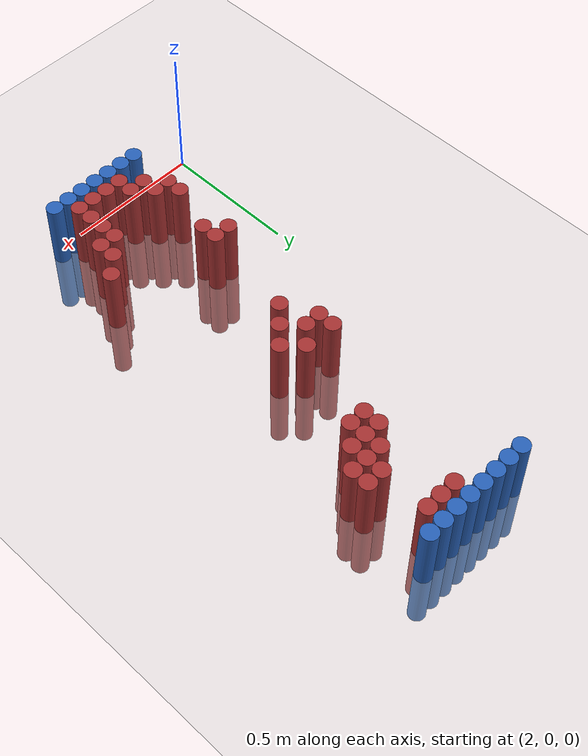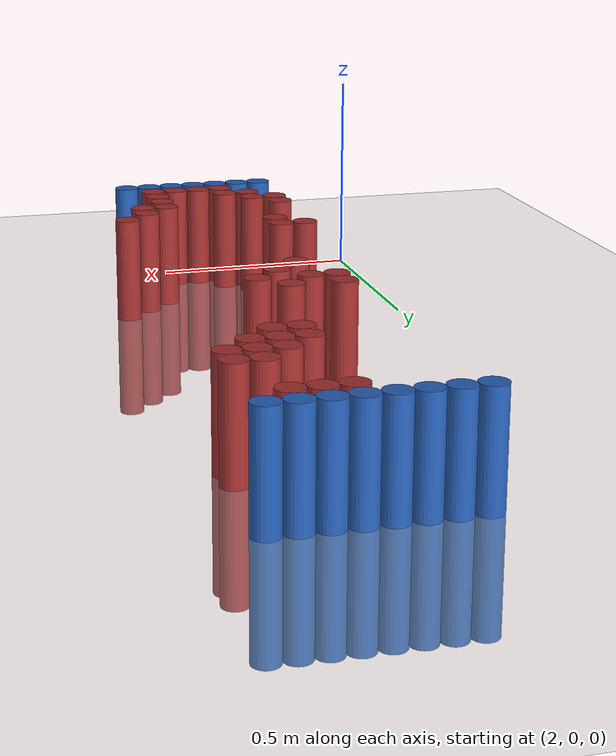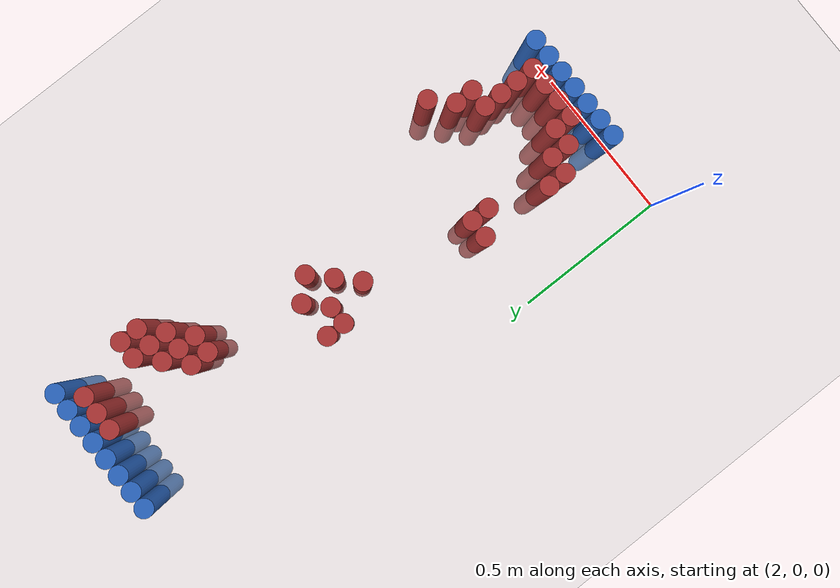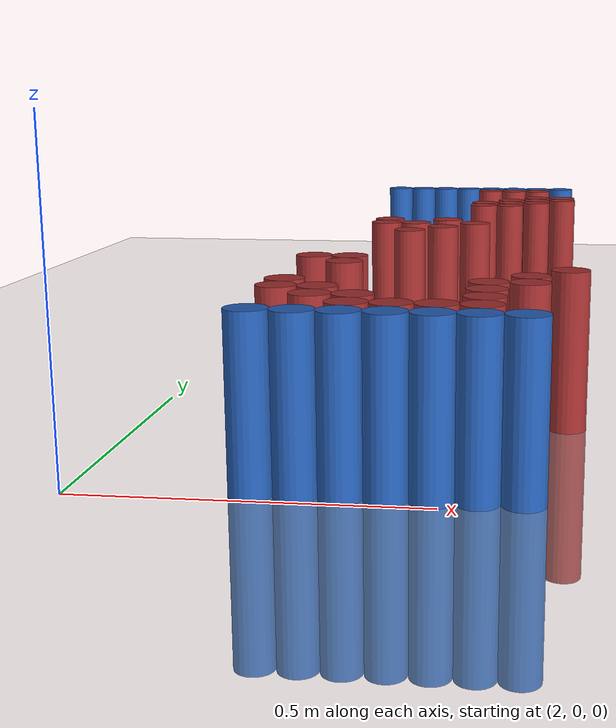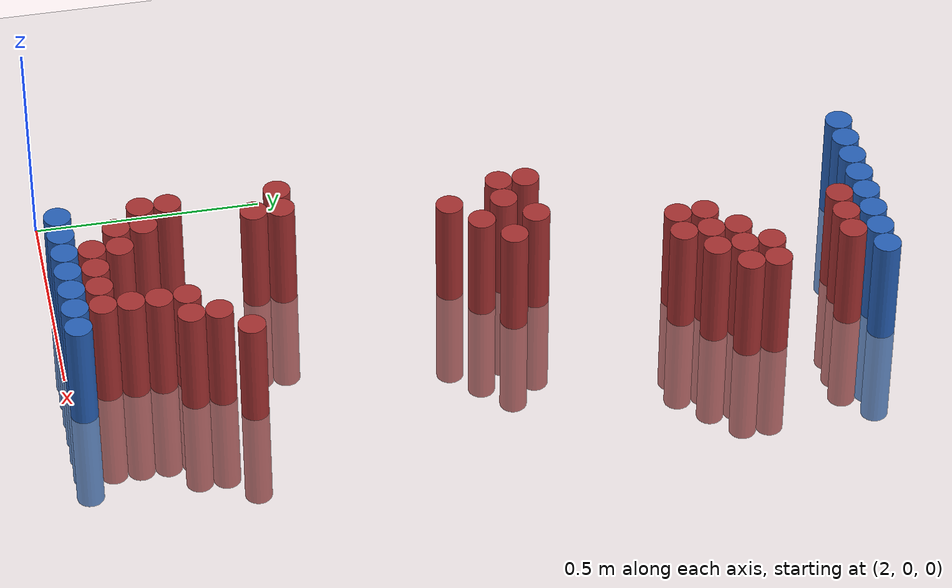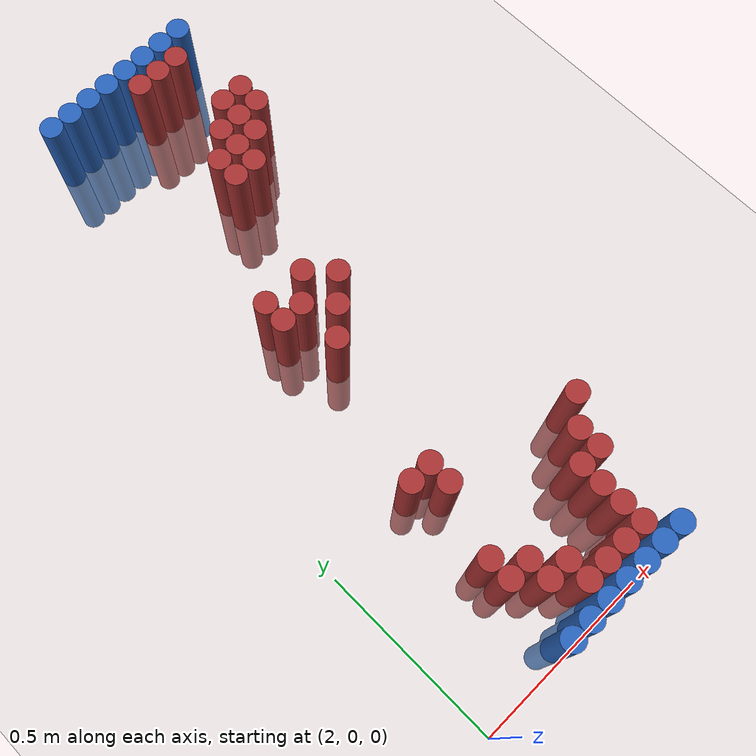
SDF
<sdf version="1.6">
 <world name="default">
  <model name="ground_plane">
   <static>1</static>
   <link name="link">
    <collision name="collision">
     <geometry><plane><normal>0 0 1</normal><size>100 100</size></plane></geometry>
     <surface><friction><ode><mu>100</mu><mu2>50</mu2></ode></friction></surface>
    </collision>
    <visual name="visual">
     <cast_shadows>0</cast_shadows>
     <geometry><plane><normal>0 0 1</normal><size>100 100</size></plane></geometry>
     <material>
      <script><uri>file://media/materials/scripts/gazebo.material</uri><name>Gazebo/Grey</name></script>
     </material>
    </visual>
   </link>
  </model>
  <model name="unit_cylinder_98">
   <static>1</static>
   <pose>2.250000 1.770000 0.000000 0.000000 0.000000 0.000000</pose>
   <link name="link">
    <inertial>
     <mass>1</mass>
     <inertia><ixx>0.145833</ixx><ixy>0</ixy><ixz>0</ixz><iyy>0.145833</iyy><iyz>0</iyz><izz>0.125</izz></inertia>
    </inertial>
    <collision name="collision">
     <geometry><cylinder><radius>0.030000</radius><length>0.5</length></cylinder></geometry>
    </collision>
    <visual name="visual">
     <geometry><cylinder><radius>0.030000</radius><length>0.5</length></cylinder></geometry>
     <material>
      <ambient>0.152000 0.379000 0.720000 1</ambient>
      <diffuse>0.152000 0.379000 0.720000 1</diffuse>
     </material>
     <material>
      <script><name>Gazebo/Grey</name><uri>file://media/materials/scripts/gazebo.material</uri></script>
     </material>
    </visual>
   </link>
  </model>
  <model name="unit_cylinder_99">
   <static>1</static>
   <pose>2.310000 1.770000 0.000000 0.000000 0.000000 0.000000</pose>
   <link name="link">
    <inertial>
     <mass>1</mass>
     <inertia><ixx>0.145833</ixx><ixy>0</ixy><ixz>0</ixz><iyy>0.145833</iyy><iyz>0</iyz><izz>0.125</izz></inertia>
    </inertial>
    <collision name="collision">
     <geometry><cylinder><radius>0.030000</radius><length>0.5</length></cylinder></geometry>
    </collision>
    <visual name="visual">
     <geometry><cylinder><radius>0.030000</radius><length>0.5</length></cylinder></geometry>
     <material>
      <ambient>0.152000 0.379000 0.720000 1</ambient>
      <diffuse>0.152000 0.379000 0.720000 1</diffuse>
     </material>
     <material>
      <script><name>Gazebo/Grey</name><uri>file://media/materials/scripts/gazebo.material</uri></script>
     </material>
    </visual>
   </link>
  </model>
  <model name="unit_cylinder_100">
   <static>1</static>
   <pose>2.370000 1.770000 0.000000 0.000000 0.000000 0.000000</pose>
   <link name="link">
    <inertial>
     <mass>1</mass>
     <inertia><ixx>0.145833</ixx><ixy>0</ixy><ixz>0</ixz><iyy>0.145833</iyy><iyz>0</iyz><izz>0.125</izz></inertia>
    </inertial>
    <collision name="collision">
     <geometry><cylinder><radius>0.030000</radius><length>0.5</length></cylinder></geometry>
    </collision>
    <visual name="visual">
     <geometry><cylinder><radius>0.030000</radius><length>0.5</length></cylinder></geometry>
     <material>
      <ambient>0.152000 0.379000 0.720000 1</ambient>
      <diffuse>0.152000 0.379000 0.720000 1</diffuse>
     </material>
     <material>
      <script><name>Gazebo/Grey</name><uri>file://media/materials/scripts/gazebo.material</uri></script>
     </material>
    </visual>
   </link>
  </model>
  <model name="unit_cylinder_101">
   <static>1</static>
   <pose>2.430000 1.770000 0.000000 0.000000 0.000000 0.000000</pose>
   <link name="link">
    <inertial>
     <mass>1</mass>
     <inertia><ixx>0.145833</ixx><ixy>0</ixy><ixz>0</ixz><iyy>0.145833</iyy><iyz>0</iyz><izz>0.125</izz></inertia>
    </inertial>
    <collision name="collision">
     <geometry><cylinder><radius>0.030000</radius><length>0.5</length></cylinder></geometry>
    </collision>
    <visual name="visual">
     <geometry><cylinder><radius>0.030000</radius><length>0.5</length></cylinder></geometry>
     <material>
      <ambient>0.152000 0.379000 0.720000 1</ambient>
      <diffuse>0.152000 0.379000 0.720000 1</diffuse>
     </material>
     <material>
      <script><name>Gazebo/Grey</name><uri>file://media/materials/scripts/gazebo.material</uri></script>
     </material>
    </visual>
   </link>
  </model>
  <model name="unit_cylinder_102">
   <static>1</static>
   <pose>2.490000 1.770000 0.000000 0.000000 0.000000 0.000000</pose>
   <link name="link">
    <inertial>
     <mass>1</mass>
     <inertia><ixx>0.145833</ixx><ixy>0</ixy><ixz>0</ixz><iyy>0.145833</iyy><iyz>0</iyz><izz>0.125</izz></inertia>
    </inertial>
    <collision name="collision">
     <geometry><cylinder><radius>0.030000</radius><length>0.5</length></cylinder></geometry>
    </collision>
    <visual name="visual">
     <geometry><cylinder><radius>0.030000</radius><length>0.5</length></cylinder></geometry>
     <material>
      <ambient>0.152000 0.379000 0.720000 1</ambient>
      <diffuse>0.152000 0.379000 0.720000 1</diffuse>
     </material>
     <material>
      <script><name>Gazebo/Grey</name><uri>file://media/materials/scripts/gazebo.material</uri></script>
     </material>
    </visual>
   </link>
  </model>
  <model name="unit_cylinder_103">
   <static>1</static>
   <pose>2.550000 1.770000 0.000000 0.000000 0.000000 0.000000</pose>
   <link name="link">
    <inertial>
     <mass>1</mass>
     <inertia><ixx>0.145833</ixx><ixy>0</ixy><ixz>0</ixz><iyy>0.145833</iyy><iyz>0</iyz><izz>0.125</izz></inertia>
    </inertial>
    <collision name="collision">
     <geometry><cylinder><radius>0.030000</radius><length>0.5</length></cylinder></geometry>
    </collision>
    <visual name="visual">
     <geometry><cylinder><radius>0.030000</radius><length>0.5</length></cylinder></geometry>
     <material>
      <ambient>0.152000 0.379000 0.720000 1</ambient>
      <diffuse>0.152000 0.379000 0.720000 1</diffuse>
     </material>
     <material>
      <script><name>Gazebo/Grey</name><uri>file://media/materials/scripts/gazebo.material</uri></script>
     </material>
    </visual>
   </link>
  </model>
  <model name="unit_cylinder_104">
   <static>1</static>
   <pose>2.610000 1.770000 0.000000 0.000000 0.000000 0.000000</pose>
   <link name="link">
    <inertial>
     <mass>1</mass>
     <inertia><ixx>0.145833</ixx><ixy>0</ixy><ixz>0</ixz><iyy>0.145833</iyy><iyz>0</iyz><izz>0.125</izz></inertia>
    </inertial>
    <collision name="collision">
     <geometry><cylinder><radius>0.030000</radius><length>0.5</length></cylinder></geometry>
    </collision>
    <visual name="visual">
     <geometry><cylinder><radius>0.030000</radius><length>0.5</length></cylinder></geometry>
     <material>
      <ambient>0.152000 0.379000 0.720000 1</ambient>
      <diffuse>0.152000 0.379000 0.720000 1</diffuse>
     </material>
     <material>
      <script><name>Gazebo/Grey</name><uri>file://media/materials/scripts/gazebo.material</uri></script>
     </material>
    </visual>
   </link>
  </model>
  <model name="unit_cylinder_105">
   <static>1</static>
   <pose>2.670000 1.770000 0.000000 0.000000 0.000000 0.000000</pose>
   <link name="link">
    <inertial>
     <mass>1</mass>
     <inertia><ixx>0.145833</ixx><ixy>0</ixy><ixz>0</ixz><iyy>0.145833</iyy><iyz>0</iyz><izz>0.125</izz></inertia>
    </inertial>
    <collision name="collision">
     <geometry><cylinder><radius>0.030000</radius><length>0.5</length></cylinder></geometry>
    </collision>
    <visual name="visual">
     <geometry><cylinder><radius>0.030000</radius><length>0.5</length></cylinder></geometry>
     <material>
      <ambient>0.152000 0.379000 0.720000 1</ambient>
      <diffuse>0.152000 0.379000 0.720000 1</diffuse>
     </material>
     <material>
      <script><name>Gazebo/Grey</name><uri>file://media/materials/scripts/gazebo.material</uri></script>
     </material>
    </visual>
   </link>
  </model>
  <model name="unit_cylinder_125">
   <static>1</static>
   <pose>2.490000 1.710000 0.000000 0.000000 0.000000 0.000000</pose>
   <link name="link">
    <inertial>
     <mass>1</mass>
     <inertia><ixx>0.145833</ixx><ixy>0</ixy><ixz>0</ixz><iyy>0.145833</iyy><iyz>0</iyz><izz>0.125</izz></inertia>
    </inertial>
    <collision name="collision">
     <geometry><cylinder><radius>0.030000</radius><length>0.5</length></cylinder></geometry>
    </collision>
    <visual name="visual">
     <geometry><cylinder><radius>0.030000</radius><length>0.5</length></cylinder></geometry>
     <material>
      <ambient>0.648000 0.192000 0.192000 1</ambient>
      <diffuse>0.648000 0.192000 0.192000 1</diffuse>
     </material>
     <material>
      <script><name>Gazebo/Grey</name><uri>file://media/materials/scripts/gazebo.material</uri></script>
     </material>
    </visual>
   </link>
  </model>
  <model name="unit_cylinder_126">
   <static>1</static>
   <pose>2.550000 1.710000 0.000000 0.000000 0.000000 0.000000</pose>
   <link name="link">
    <inertial>
     <mass>1</mass>
     <inertia><ixx>0.145833</ixx><ixy>0</ixy><ixz>0</ixz><iyy>0.145833</iyy><iyz>0</iyz><izz>0.125</izz></inertia>
    </inertial>
    <collision name="collision">
     <geometry><cylinder><radius>0.030000</radius><length>0.5</length></cylinder></geometry>
    </collision>
    <visual name="visual">
     <geometry><cylinder><radius>0.030000</radius><length>0.5</length></cylinder></geometry>
     <material>
      <ambient>0.648000 0.192000 0.192000 1</ambient>
      <diffuse>0.648000 0.192000 0.192000 1</diffuse>
     </material>
     <material>
      <script><name>Gazebo/Grey</name><uri>file://media/materials/scripts/gazebo.material</uri></script>
     </material>
    </visual>
   </link>
  </model>
  <model name="unit_cylinder_127">
   <static>1</static>
   <pose>2.610000 1.710000 0.000000 0.000000 0.000000 0.000000</pose>
   <link name="link">
    <inertial>
     <mass>1</mass>
     <inertia><ixx>0.145833</ixx><ixy>0</ixy><ixz>0</ixz><iyy>0.145833</iyy><iyz>0</iyz><izz>0.125</izz></inertia>
    </inertial>
    <collision name="collision">
     <geometry><cylinder><radius>0.030000</radius><length>0.5</length></cylinder></geometry>
    </collision>
    <visual name="visual">
     <geometry><cylinder><radius>0.030000</radius><length>0.5</length></cylinder></geometry>
     <material>
      <ambient>0.648000 0.192000 0.192000 1</ambient>
      <diffuse>0.648000 0.192000 0.192000 1</diffuse>
     </material>
     <material>
      <script><name>Gazebo/Grey</name><uri>file://media/materials/scripts/gazebo.material</uri></script>
     </material>
    </visual>
   </link>
  </model>
  <model name="unit_cylinder_140">
   <static>1</static>
   <pose>2.610000 1.530000 0.000000 0.000000 0.000000 0.000000</pose>
   <link name="link">
    <inertial>
     <mass>1</mass>
     <inertia><ixx>0.145833</ixx><ixy>0</ixy><ixz>0</ixz><iyy>0.145833</iyy><iyz>0</iyz><izz>0.125</izz></inertia>
    </inertial>
    <collision name="collision">
     <geometry><cylinder><radius>0.030000</radius><length>0.5</length></cylinder></geometry>
    </collision>
    <visual name="visual">
     <geometry><cylinder><radius>0.030000</radius><length>0.5</length></cylinder></geometry>
     <material>
      <ambient>0.648000 0.192000 0.192000 1</ambient>
      <diffuse>0.648000 0.192000 0.192000 1</diffuse>
     </material>
     <material>
      <script><name>Gazebo/Grey</name><uri>file://media/materials/scripts/gazebo.material</uri></script>
     </material>
    </visual>
   </link>
  </model>
  <model name="unit_cylinder_141">
   <static>1</static>
   <pose>2.670000 1.530000 0.000000 0.000000 0.000000 0.000000</pose>
   <link name="link">
    <inertial>
     <mass>1</mass>
     <inertia><ixx>0.145833</ixx><ixy>0</ixy><ixz>0</ixz><iyy>0.145833</iyy><iyz>0</iyz><izz>0.125</izz></inertia>
    </inertial>
    <collision name="collision">
     <geometry><cylinder><radius>0.030000</radius><length>0.5</length></cylinder></geometry>
    </collision>
    <visual name="visual">
     <geometry><cylinder><radius>0.030000</radius><length>0.5</length></cylinder></geometry>
     <material>
      <ambient>0.648000 0.192000 0.192000 1</ambient>
      <diffuse>0.648000 0.192000 0.192000 1</diffuse>
     </material>
     <material>
      <script><name>Gazebo/Grey</name><uri>file://media/materials/scripts/gazebo.material</uri></script>
     </material>
    </visual>
   </link>
  </model>
  <model name="unit_cylinder_143">
   <static>1</static>
   <pose>2.550000 1.470000 0.000000 0.000000 0.000000 0.000000</pose>
   <link name="link">
    <inertial>
     <mass>1</mass>
     <inertia><ixx>0.145833</ixx><ixy>0</ixy><ixz>0</ixz><iyy>0.145833</iyy><iyz>0</iyz><izz>0.125</izz></inertia>
    </inertial>
    <collision name="collision">
     <geometry><cylinder><radius>0.030000</radius><length>0.5</length></cylinder></geometry>
    </collision>
    <visual name="visual">
     <geometry><cylinder><radius>0.030000</radius><length>0.5</length></cylinder></geometry>
     <material>
      <ambient>0.648000 0.192000 0.192000 1</ambient>
      <diffuse>0.648000 0.192000 0.192000 1</diffuse>
     </material>
     <material>
      <script><name>Gazebo/Grey</name><uri>file://media/materials/scripts/gazebo.material</uri></script>
     </material>
    </visual>
   </link>
  </model>
  <model name="unit_cylinder_144">
   <static>1</static>
   <pose>2.610000 1.470000 0.000000 0.000000 0.000000 0.000000</pose>
   <link name="link">
    <inertial>
     <mass>1</mass>
     <inertia><ixx>0.145833</ixx><ixy>0</ixy><ixz>0</ixz><iyy>0.145833</iyy><iyz>0</iyz><izz>0.125</izz></inertia>
    </inertial>
    <collision name="collision">
     <geometry><cylinder><radius>0.030000</radius><length>0.5</length></cylinder></geometry>
    </collision>
    <visual name="visual">
     <geometry><cylinder><radius>0.030000</radius><length>0.5</length></cylinder></geometry>
     <material>
      <ambient>0.648000 0.192000 0.192000 1</ambient>
      <diffuse>0.648000 0.192000 0.192000 1</diffuse>
     </material>
     <material>
      <script><name>Gazebo/Grey</name><uri>file://media/materials/scripts/gazebo.material</uri></script>
     </material>
    </visual>
   </link>
  </model>
  <model name="unit_cylinder_145">
   <static>1</static>
   <pose>2.670000 1.470000 0.000000 0.000000 0.000000 0.000000</pose>
   <link name="link">
    <inertial>
     <mass>1</mass>
     <inertia><ixx>0.145833</ixx><ixy>0</ixy><ixz>0</ixz><iyy>0.145833</iyy><iyz>0</iyz><izz>0.125</izz></inertia>
    </inertial>
    <collision name="collision">
     <geometry><cylinder><radius>0.030000</radius><length>0.5</length></cylinder></geometry>
    </collision>
    <visual name="visual">
     <geometry><cylinder><radius>0.030000</radius><length>0.5</length></cylinder></geometry>
     <material>
      <ambient>0.648000 0.192000 0.192000 1</ambient>
      <diffuse>0.648000 0.192000 0.192000 1</diffuse>
     </material>
     <material>
      <script><name>Gazebo/Grey</name><uri>file://media/materials/scripts/gazebo.material</uri></script>
     </material>
    </visual>
   </link>
  </model>
  <model name="unit_cylinder_146">
   <static>1</static>
   <pose>2.490000 1.410000 0.000000 0.000000 0.000000 0.000000</pose>
   <link name="link">
    <inertial>
     <mass>1</mass>
     <inertia><ixx>0.145833</ixx><ixy>0</ixy><ixz>0</ixz><iyy>0.145833</iyy><iyz>0</iyz><izz>0.125</izz></inertia>
    </inertial>
    <collision name="collision">
     <geometry><cylinder><radius>0.030000</radius><length>0.5</length></cylinder></geometry>
    </collision>
    <visual name="visual">
     <geometry><cylinder><radius>0.030000</radius><length>0.5</length></cylinder></geometry>
     <material>
      <ambient>0.648000 0.192000 0.192000 1</ambient>
      <diffuse>0.648000 0.192000 0.192000 1</diffuse>
     </material>
     <material>
      <script><name>Gazebo/Grey</name><uri>file://media/materials/scripts/gazebo.material</uri></script>
     </material>
    </visual>
   </link>
  </model>
  <model name="unit_cylinder_147">
   <static>1</static>
   <pose>2.550000 1.410000 0.000000 0.000000 0.000000 0.000000</pose>
   <link name="link">
    <inertial>
     <mass>1</mass>
     <inertia><ixx>0.145833</ixx><ixy>0</ixy><ixz>0</ixz><iyy>0.145833</iyy><iyz>0</iyz><izz>0.125</izz></inertia>
    </inertial>
    <collision name="collision">
     <geometry><cylinder><radius>0.030000</radius><length>0.5</length></cylinder></geometry>
    </collision>
    <visual name="visual">
     <geometry><cylinder><radius>0.030000</radius><length>0.5</length></cylinder></geometry>
     <material>
      <ambient>0.648000 0.192000 0.192000 1</ambient>
      <diffuse>0.648000 0.192000 0.192000 1</diffuse>
     </material>
     <material>
      <script><name>Gazebo/Grey</name><uri>file://media/materials/scripts/gazebo.material</uri></script>
     </material>
    </visual>
   </link>
  </model>
  <model name="unit_cylinder_148">
   <static>1</static>
   <pose>2.610000 1.410000 0.000000 0.000000 0.000000 0.000000</pose>
   <link name="link">
    <inertial>
     <mass>1</mass>
     <inertia><ixx>0.145833</ixx><ixy>0</ixy><ixz>0</ixz><iyy>0.145833</iyy><iyz>0</iyz><izz>0.125</izz></inertia>
    </inertial>
    <collision name="collision">
     <geometry><cylinder><radius>0.030000</radius><length>0.5</length></cylinder></geometry>
    </collision>
    <visual name="visual">
     <geometry><cylinder><radius>0.030000</radius><length>0.5</length></cylinder></geometry>
     <material>
      <ambient>0.648000 0.192000 0.192000 1</ambient>
      <diffuse>0.648000 0.192000 0.192000 1</diffuse>
     </material>
     <material>
      <script><name>Gazebo/Grey</name><uri>file://media/materials/scripts/gazebo.material</uri></script>
     </material>
    </visual>
   </link>
  </model>
  <model name="unit_cylinder_149">
   <static>1</static>
   <pose>2.490000 1.350000 0.000000 0.000000 0.000000 0.000000</pose>
   <link name="link">
    <inertial>
     <mass>1</mass>
     <inertia><ixx>0.145833</ixx><ixy>0</ixy><ixz>0</ixz><iyy>0.145833</iyy><iyz>0</iyz><izz>0.125</izz></inertia>
    </inertial>
    <collision name="collision">
     <geometry><cylinder><radius>0.030000</radius><length>0.5</length></cylinder></geometry>
    </collision>
    <visual name="visual">
     <geometry><cylinder><radius>0.030000</radius><length>0.5</length></cylinder></geometry>
     <material>
      <ambient>0.648000 0.192000 0.192000 1</ambient>
      <diffuse>0.648000 0.192000 0.192000 1</diffuse>
     </material>
     <material>
      <script><name>Gazebo/Grey</name><uri>file://media/materials/scripts/gazebo.material</uri></script>
     </material>
    </visual>
   </link>
  </model>
  <model name="unit_cylinder_150">
   <static>1</static>
   <pose>2.550000 1.350000 0.000000 0.000000 0.000000 0.000000</pose>
   <link name="link">
    <inertial>
     <mass>1</mass>
     <inertia><ixx>0.145833</ixx><ixy>0</ixy><ixz>0</ixz><iyy>0.145833</iyy><iyz>0</iyz><izz>0.125</izz></inertia>
    </inertial>
    <collision name="collision">
     <geometry><cylinder><radius>0.030000</radius><length>0.5</length></cylinder></geometry>
    </collision>
    <visual name="visual">
     <geometry><cylinder><radius>0.030000</radius><length>0.5</length></cylinder></geometry>
     <material>
      <ambient>0.648000 0.192000 0.192000 1</ambient>
      <diffuse>0.648000 0.192000 0.192000 1</diffuse>
     </material>
     <material>
      <script><name>Gazebo/Grey</name><uri>file://media/materials/scripts/gazebo.material</uri></script>
     </material>
    </visual>
   </link>
  </model>
  <model name="unit_cylinder_161">
   <static>1</static>
   <pose>2.310000 1.050000 0.000000 0.000000 0.000000 0.000000</pose>
   <link name="link">
    <inertial>
     <mass>1</mass>
     <inertia><ixx>0.145833</ixx><ixy>0</ixy><ixz>0</ixz><iyy>0.145833</iyy><iyz>0</iyz><izz>0.125</izz></inertia>
    </inertial>
    <collision name="collision">
     <geometry><cylinder><radius>0.030000</radius><length>0.5</length></cylinder></geometry>
    </collision>
    <visual name="visual">
     <geometry><cylinder><radius>0.030000</radius><length>0.5</length></cylinder></geometry>
     <material>
      <ambient>0.648000 0.192000 0.192000 1</ambient>
      <diffuse>0.648000 0.192000 0.192000 1</diffuse>
     </material>
     <material>
      <script><name>Gazebo/Grey</name><uri>file://media/materials/scripts/gazebo.material</uri></script>
     </material>
    </visual>
   </link>
  </model>
  <model name="unit_cylinder_162">
   <static>1</static>
   <pose>2.430000 1.050000 0.000000 0.000000 0.000000 0.000000</pose>
   <link name="link">
    <inertial>
     <mass>1</mass>
     <inertia><ixx>0.145833</ixx><ixy>0</ixy><ixz>0</ixz><iyy>0.145833</iyy><iyz>0</iyz><izz>0.125</izz></inertia>
    </inertial>
    <collision name="collision">
     <geometry><cylinder><radius>0.030000</radius><length>0.5</length></cylinder></geometry>
    </collision>
    <visual name="visual">
     <geometry><cylinder><radius>0.030000</radius><length>0.5</length></cylinder></geometry>
     <material>
      <ambient>0.648000 0.192000 0.192000 1</ambient>
      <diffuse>0.648000 0.192000 0.192000 1</diffuse>
     </material>
     <material>
      <script><name>Gazebo/Grey</name><uri>file://media/materials/scripts/gazebo.material</uri></script>
     </material>
    </visual>
   </link>
  </model>
  <model name="unit_cylinder_167">
   <static>1</static>
   <pose>2.310000 0.990000 0.000000 0.000000 0.000000 0.000000</pose>
   <link name="link">
    <inertial>
     <mass>1</mass>
     <inertia><ixx>0.145833</ixx><ixy>0</ixy><ixz>0</ixz><iyy>0.145833</iyy><iyz>0</iyz><izz>0.125</izz></inertia>
    </inertial>
    <collision name="collision">
     <geometry><cylinder><radius>0.030000</radius><length>0.5</length></cylinder></geometry>
    </collision>
    <visual name="visual">
     <geometry><cylinder><radius>0.030000</radius><length>0.5</length></cylinder></geometry>
     <material>
      <ambient>0.648000 0.192000 0.192000 1</ambient>
      <diffuse>0.648000 0.192000 0.192000 1</diffuse>
     </material>
     <material>
      <script><name>Gazebo/Grey</name><uri>file://media/materials/scripts/gazebo.material</uri></script>
     </material>
    </visual>
   </link>
  </model>
  <model name="unit_cylinder_168">
   <static>1</static>
   <pose>2.370000 0.990000 0.000000 0.000000 0.000000 0.000000</pose>
   <link name="link">
    <inertial>
     <mass>1</mass>
     <inertia><ixx>0.145833</ixx><ixy>0</ixy><ixz>0</ixz><iyy>0.145833</iyy><iyz>0</iyz><izz>0.125</izz></inertia>
    </inertial>
    <collision name="collision">
     <geometry><cylinder><radius>0.030000</radius><length>0.5</length></cylinder></geometry>
    </collision>
    <visual name="visual">
     <geometry><cylinder><radius>0.030000</radius><length>0.5</length></cylinder></geometry>
     <material>
      <ambient>0.648000 0.192000 0.192000 1</ambient>
      <diffuse>0.648000 0.192000 0.192000 1</diffuse>
     </material>
     <material>
      <script><name>Gazebo/Grey</name><uri>file://media/materials/scripts/gazebo.material</uri></script>
     </material>
    </visual>
   </link>
  </model>
  <model name="unit_cylinder_169">
   <static>1</static>
   <pose>2.490000 0.990000 0.000000 0.000000 0.000000 0.000000</pose>
   <link name="link">
    <inertial>
     <mass>1</mass>
     <inertia><ixx>0.145833</ixx><ixy>0</ixy><ixz>0</ixz><iyy>0.145833</iyy><iyz>0</iyz><izz>0.125</izz></inertia>
    </inertial>
    <collision name="collision">
     <geometry><cylinder><radius>0.030000</radius><length>0.5</length></cylinder></geometry>
    </collision>
    <visual name="visual">
     <geometry><cylinder><radius>0.030000</radius><length>0.5</length></cylinder></geometry>
     <material>
      <ambient>0.648000 0.192000 0.192000 1</ambient>
      <diffuse>0.648000 0.192000 0.192000 1</diffuse>
     </material>
     <material>
      <script><name>Gazebo/Grey</name><uri>file://media/materials/scripts/gazebo.material</uri></script>
     </material>
    </visual>
   </link>
  </model>
  <model name="unit_cylinder_179">
   <static>1</static>
   <pose>2.430000 0.930000 0.000000 0.000000 0.000000 0.000000</pose>
   <link name="link">
    <inertial>
     <mass>1</mass>
     <inertia><ixx>0.145833</ixx><ixy>0</ixy><ixz>0</ixz><iyy>0.145833</iyy><iyz>0</iyz><izz>0.125</izz></inertia>
    </inertial>
    <collision name="collision">
     <geometry><cylinder><radius>0.030000</radius><length>0.5</length></cylinder></geometry>
    </collision>
    <visual name="visual">
     <geometry><cylinder><radius>0.030000</radius><length>0.5</length></cylinder></geometry>
     <material>
      <ambient>0.648000 0.192000 0.192000 1</ambient>
      <diffuse>0.648000 0.192000 0.192000 1</diffuse>
     </material>
     <material>
      <script><name>Gazebo/Grey</name><uri>file://media/materials/scripts/gazebo.material</uri></script>
     </material>
    </visual>
   </link>
  </model>
  <model name="unit_cylinder_186">
   <static>1</static>
   <pose>2.370000 0.870000 0.000000 0.000000 0.000000 0.000000</pose>
   <link name="link">
    <inertial>
     <mass>1</mass>
     <inertia><ixx>0.145833</ixx><ixy>0</ixy><ixz>0</ixz><iyy>0.145833</iyy><iyz>0</iyz><izz>0.125</izz></inertia>
    </inertial>
    <collision name="collision">
     <geometry><cylinder><radius>0.030000</radius><length>0.5</length></cylinder></geometry>
    </collision>
    <visual name="visual">
     <geometry><cylinder><radius>0.030000</radius><length>0.5</length></cylinder></geometry>
     <material>
      <ambient>0.648000 0.192000 0.192000 1</ambient>
      <diffuse>0.648000 0.192000 0.192000 1</diffuse>
     </material>
     <material>
      <script><name>Gazebo/Grey</name><uri>file://media/materials/scripts/gazebo.material</uri></script>
     </material>
    </visual>
   </link>
  </model>
  <model name="unit_cylinder_218">
   <static>1</static>
   <pose>2.250000 0.510000 0.000000 0.000000 0.000000 0.000000</pose>
   <link name="link">
    <inertial>
     <mass>1</mass>
     <inertia><ixx>0.145833</ixx><ixy>0</ixy><ixz>0</ixz><iyy>0.145833</iyy><iyz>0</iyz><izz>0.125</izz></inertia>
    </inertial>
    <collision name="collision">
     <geometry><cylinder><radius>0.030000</radius><length>0.5</length></cylinder></geometry>
    </collision>
    <visual name="visual">
     <geometry><cylinder><radius>0.030000</radius><length>0.5</length></cylinder></geometry>
     <material>
      <ambient>0.648000 0.192000 0.192000 1</ambient>
      <diffuse>0.648000 0.192000 0.192000 1</diffuse>
     </material>
     <material>
      <script><name>Gazebo/Grey</name><uri>file://media/materials/scripts/gazebo.material</uri></script>
     </material>
    </visual>
   </link>
  </model>
  <model name="unit_cylinder_219">
   <static>1</static>
   <pose>2.310000 0.510000 0.000000 0.000000 0.000000 0.000000</pose>
   <link name="link">
    <inertial>
     <mass>1</mass>
     <inertia><ixx>0.145833</ixx><ixy>0</ixy><ixz>0</ixz><iyy>0.145833</iyy><iyz>0</iyz><izz>0.125</izz></inertia>
    </inertial>
    <collision name="collision">
     <geometry><cylinder><radius>0.030000</radius><length>0.5</length></cylinder></geometry>
    </collision>
    <visual name="visual">
     <geometry><cylinder><radius>0.030000</radius><length>0.5</length></cylinder></geometry>
     <material>
      <ambient>0.648000 0.192000 0.192000 1</ambient>
      <diffuse>0.648000 0.192000 0.192000 1</diffuse>
     </material>
     <material>
      <script><name>Gazebo/Grey</name><uri>file://media/materials/scripts/gazebo.material</uri></script>
     </material>
    </visual>
   </link>
  </model>
  <model name="unit_cylinder_225">
   <static>1</static>
   <pose>2.310000 0.450000 0.000000 0.000000 0.000000 0.000000</pose>
   <link name="link">
    <inertial>
     <mass>1</mass>
     <inertia><ixx>0.145833</ixx><ixy>0</ixy><ixz>0</ixz><iyy>0.145833</iyy><iyz>0</iyz><izz>0.125</izz></inertia>
    </inertial>
    <collision name="collision">
     <geometry><cylinder><radius>0.030000</radius><length>0.5</length></cylinder></geometry>
    </collision>
    <visual name="visual">
     <geometry><cylinder><radius>0.030000</radius><length>0.5</length></cylinder></geometry>
     <material>
      <ambient>0.648000 0.192000 0.192000 1</ambient>
      <diffuse>0.648000 0.192000 0.192000 1</diffuse>
     </material>
     <material>
      <script><name>Gazebo/Grey</name><uri>file://media/materials/scripts/gazebo.material</uri></script>
     </material>
    </visual>
   </link>
  </model>
  <model name="unit_cylinder_232">
   <static>1</static>
   <pose>2.670000 0.390000 0.000000 0.000000 0.000000 0.000000</pose>
   <link name="link">
    <inertial>
     <mass>1</mass>
     <inertia><ixx>0.145833</ixx><ixy>0</ixy><ixz>0</ixz><iyy>0.145833</iyy><iyz>0</iyz><izz>0.125</izz></inertia>
    </inertial>
    <collision name="collision">
     <geometry><cylinder><radius>0.030000</radius><length>0.5</length></cylinder></geometry>
    </collision>
    <visual name="visual">
     <geometry><cylinder><radius>0.030000</radius><length>0.5</length></cylinder></geometry>
     <material>
      <ambient>0.648000 0.192000 0.192000 1</ambient>
      <diffuse>0.648000 0.192000 0.192000 1</diffuse>
     </material>
     <material>
      <script><name>Gazebo/Grey</name><uri>file://media/materials/scripts/gazebo.material</uri></script>
     </material>
    </visual>
   </link>
  </model>
  <model name="unit_cylinder_239">
   <static>1</static>
   <pose>2.610000 0.330000 0.000000 0.000000 0.000000 0.000000</pose>
   <link name="link">
    <inertial>
     <mass>1</mass>
     <inertia><ixx>0.145833</ixx><ixy>0</ixy><ixz>0</ixz><iyy>0.145833</iyy><iyz>0</iyz><izz>0.125</izz></inertia>
    </inertial>
    <collision name="collision">
     <geometry><cylinder><radius>0.030000</radius><length>0.5</length></cylinder></geometry>
    </collision>
    <visual name="visual">
     <geometry><cylinder><radius>0.030000</radius><length>0.5</length></cylinder></geometry>
     <material>
      <ambient>0.648000 0.192000 0.192000 1</ambient>
      <diffuse>0.648000 0.192000 0.192000 1</diffuse>
     </material>
     <material>
      <script><name>Gazebo/Grey</name><uri>file://media/materials/scripts/gazebo.material</uri></script>
     </material>
    </visual>
   </link>
  </model>
  <model name="unit_cylinder_245">
   <static>1</static>
   <pose>2.250000 0.270000 0.000000 0.000000 0.000000 0.000000</pose>
   <link name="link">
    <inertial>
     <mass>1</mass>
     <inertia><ixx>0.145833</ixx><ixy>0</ixy><ixz>0</ixz><iyy>0.145833</iyy><iyz>0</iyz><izz>0.125</izz></inertia>
    </inertial>
    <collision name="collision">
     <geometry><cylinder><radius>0.030000</radius><length>0.5</length></cylinder></geometry>
    </collision>
    <visual name="visual">
     <geometry><cylinder><radius>0.030000</radius><length>0.5</length></cylinder></geometry>
     <material>
      <ambient>0.648000 0.192000 0.192000 1</ambient>
      <diffuse>0.648000 0.192000 0.192000 1</diffuse>
     </material>
     <material>
      <script><name>Gazebo/Grey</name><uri>file://media/materials/scripts/gazebo.material</uri></script>
     </material>
    </visual>
   </link>
  </model>
  <model name="unit_cylinder_246">
   <static>1</static>
   <pose>2.550000 0.270000 0.000000 0.000000 0.000000 0.000000</pose>
   <link name="link">
    <inertial>
     <mass>1</mass>
     <inertia><ixx>0.145833</ixx><ixy>0</ixy><ixz>0</ixz><iyy>0.145833</iyy><iyz>0</iyz><izz>0.125</izz></inertia>
    </inertial>
    <collision name="collision">
     <geometry><cylinder><radius>0.030000</radius><length>0.5</length></cylinder></geometry>
    </collision>
    <visual name="visual">
     <geometry><cylinder><radius>0.030000</radius><length>0.5</length></cylinder></geometry>
     <material>
      <ambient>0.648000 0.192000 0.192000 1</ambient>
      <diffuse>0.648000 0.192000 0.192000 1</diffuse>
     </material>
     <material>
      <script><name>Gazebo/Grey</name><uri>file://media/materials/scripts/gazebo.material</uri></script>
     </material>
    </visual>
   </link>
  </model>
  <model name="unit_cylinder_247">
   <static>1</static>
   <pose>2.610000 0.270000 0.000000 0.000000 0.000000 0.000000</pose>
   <link name="link">
    <inertial>
     <mass>1</mass>
     <inertia><ixx>0.145833</ixx><ixy>0</ixy><ixz>0</ixz><iyy>0.145833</iyy><iyz>0</iyz><izz>0.125</izz></inertia>
    </inertial>
    <collision name="collision">
     <geometry><cylinder><radius>0.030000</radius><length>0.5</length></cylinder></geometry>
    </collision>
    <visual name="visual">
     <geometry><cylinder><radius>0.030000</radius><length>0.5</length></cylinder></geometry>
     <material>
      <ambient>0.648000 0.192000 0.192000 1</ambient>
      <diffuse>0.648000 0.192000 0.192000 1</diffuse>
     </material>
     <material>
      <script><name>Gazebo/Grey</name><uri>file://media/materials/scripts/gazebo.material</uri></script>
     </material>
    </visual>
   </link>
  </model>
  <model name="unit_cylinder_251">
   <static>1</static>
   <pose>2.250000 0.210000 0.000000 0.000000 0.000000 0.000000</pose>
   <link name="link">
    <inertial>
     <mass>1</mass>
     <inertia><ixx>0.145833</ixx><ixy>0</ixy><ixz>0</ixz><iyy>0.145833</iyy><iyz>0</iyz><izz>0.125</izz></inertia>
    </inertial>
    <collision name="collision">
     <geometry><cylinder><radius>0.030000</radius><length>0.5</length></cylinder></geometry>
    </collision>
    <visual name="visual">
     <geometry><cylinder><radius>0.030000</radius><length>0.5</length></cylinder></geometry>
     <material>
      <ambient>0.648000 0.192000 0.192000 1</ambient>
      <diffuse>0.648000 0.192000 0.192000 1</diffuse>
     </material>
     <material>
      <script><name>Gazebo/Grey</name><uri>file://media/materials/scripts/gazebo.material</uri></script>
     </material>
    </visual>
   </link>
  </model>
  <model name="unit_cylinder_252">
   <static>1</static>
   <pose>2.310000 0.210000 0.000000 0.000000 0.000000 0.000000</pose>
   <link name="link">
    <inertial>
     <mass>1</mass>
     <inertia><ixx>0.145833</ixx><ixy>0</ixy><ixz>0</ixz><iyy>0.145833</iyy><iyz>0</iyz><izz>0.125</izz></inertia>
    </inertial>
    <collision name="collision">
     <geometry><cylinder><radius>0.030000</radius><length>0.5</length></cylinder></geometry>
    </collision>
    <visual name="visual">
     <geometry><cylinder><radius>0.030000</radius><length>0.5</length></cylinder></geometry>
     <material>
      <ambient>0.648000 0.192000 0.192000 1</ambient>
      <diffuse>0.648000 0.192000 0.192000 1</diffuse>
     </material>
     <material>
      <script><name>Gazebo/Grey</name><uri>file://media/materials/scripts/gazebo.material</uri></script>
     </material>
    </visual>
   </link>
  </model>
  <model name="unit_cylinder_253">
   <static>1</static>
   <pose>2.550000 0.210000 0.000000 0.000000 0.000000 0.000000</pose>
   <link name="link">
    <inertial>
     <mass>1</mass>
     <inertia><ixx>0.145833</ixx><ixy>0</ixy><ixz>0</ixz><iyy>0.145833</iyy><iyz>0</iyz><izz>0.125</izz></inertia>
    </inertial>
    <collision name="collision">
     <geometry><cylinder><radius>0.030000</radius><length>0.5</length></cylinder></geometry>
    </collision>
    <visual name="visual">
     <geometry><cylinder><radius>0.030000</radius><length>0.5</length></cylinder></geometry>
     <material>
      <ambient>0.648000 0.192000 0.192000 1</ambient>
      <diffuse>0.648000 0.192000 0.192000 1</diffuse>
     </material>
     <material>
      <script><name>Gazebo/Grey</name><uri>file://media/materials/scripts/gazebo.material</uri></script>
     </material>
    </visual>
   </link>
  </model>
  <model name="unit_cylinder_256">
   <static>1</static>
   <pose>2.310000 0.150000 0.000000 0.000000 0.000000 0.000000</pose>
   <link name="link">
    <inertial>
     <mass>1</mass>
     <inertia><ixx>0.145833</ixx><ixy>0</ixy><ixz>0</ixz><iyy>0.145833</iyy><iyz>0</iyz><izz>0.125</izz></inertia>
    </inertial>
    <collision name="collision">
     <geometry><cylinder><radius>0.030000</radius><length>0.5</length></cylinder></geometry>
    </collision>
    <visual name="visual">
     <geometry><cylinder><radius>0.030000</radius><length>0.5</length></cylinder></geometry>
     <material>
      <ambient>0.648000 0.192000 0.192000 1</ambient>
      <diffuse>0.648000 0.192000 0.192000 1</diffuse>
     </material>
     <material>
      <script><name>Gazebo/Grey</name><uri>file://media/materials/scripts/gazebo.material</uri></script>
     </material>
    </visual>
   </link>
  </model>
  <model name="unit_cylinder_257">
   <static>1</static>
   <pose>2.370000 0.150000 0.000000 0.000000 0.000000 0.000000</pose>
   <link name="link">
    <inertial>
     <mass>1</mass>
     <inertia><ixx>0.145833</ixx><ixy>0</ixy><ixz>0</ixz><iyy>0.145833</iyy><iyz>0</iyz><izz>0.125</izz></inertia>
    </inertial>
    <collision name="collision">
     <geometry><cylinder><radius>0.030000</radius><length>0.5</length></cylinder></geometry>
    </collision>
    <visual name="visual">
     <geometry><cylinder><radius>0.030000</radius><length>0.5</length></cylinder></geometry>
     <material>
      <ambient>0.648000 0.192000 0.192000 1</ambient>
      <diffuse>0.648000 0.192000 0.192000 1</diffuse>
     </material>
     <material>
      <script><name>Gazebo/Grey</name><uri>file://media/materials/scripts/gazebo.material</uri></script>
     </material>
    </visual>
   </link>
  </model>
  <model name="unit_cylinder_258">
   <static>1</static>
   <pose>2.550000 0.150000 0.000000 0.000000 0.000000 0.000000</pose>
   <link name="link">
    <inertial>
     <mass>1</mass>
     <inertia><ixx>0.145833</ixx><ixy>0</ixy><ixz>0</ixz><iyy>0.145833</iyy><iyz>0</iyz><izz>0.125</izz></inertia>
    </inertial>
    <collision name="collision">
     <geometry><cylinder><radius>0.030000</radius><length>0.5</length></cylinder></geometry>
    </collision>
    <visual name="visual">
     <geometry><cylinder><radius>0.030000</radius><length>0.5</length></cylinder></geometry>
     <material>
      <ambient>0.648000 0.192000 0.192000 1</ambient>
      <diffuse>0.648000 0.192000 0.192000 1</diffuse>
     </material>
     <material>
      <script><name>Gazebo/Grey</name><uri>file://media/materials/scripts/gazebo.material</uri></script>
     </material>
    </visual>
   </link>
  </model>
  <model name="unit_cylinder_268">
   <static>1</static>
   <pose>2.370000 0.090000 0.000000 0.000000 0.000000 0.000000</pose>
   <link name="link">
    <inertial>
     <mass>1</mass>
     <inertia><ixx>0.145833</ixx><ixy>0</ixy><ixz>0</ixz><iyy>0.145833</iyy><iyz>0</iyz><izz>0.125</izz></inertia>
    </inertial>
    <collision name="collision">
     <geometry><cylinder><radius>0.030000</radius><length>0.5</length></cylinder></geometry>
    </collision>
    <visual name="visual">
     <geometry><cylinder><radius>0.030000</radius><length>0.5</length></cylinder></geometry>
     <material>
      <ambient>0.648000 0.192000 0.192000 1</ambient>
      <diffuse>0.648000 0.192000 0.192000 1</diffuse>
     </material>
     <material>
      <script><name>Gazebo/Grey</name><uri>file://media/materials/scripts/gazebo.material</uri></script>
     </material>
    </visual>
   </link>
  </model>
  <model name="unit_cylinder_269">
   <static>1</static>
   <pose>2.430000 0.090000 0.000000 0.000000 0.000000 0.000000</pose>
   <link name="link">
    <inertial>
     <mass>1</mass>
     <inertia><ixx>0.145833</ixx><ixy>0</ixy><ixz>0</ixz><iyy>0.145833</iyy><iyz>0</iyz><izz>0.125</izz></inertia>
    </inertial>
    <collision name="collision">
     <geometry><cylinder><radius>0.030000</radius><length>0.5</length></cylinder></geometry>
    </collision>
    <visual name="visual">
     <geometry><cylinder><radius>0.030000</radius><length>0.5</length></cylinder></geometry>
     <material>
      <ambient>0.648000 0.192000 0.192000 1</ambient>
      <diffuse>0.648000 0.192000 0.192000 1</diffuse>
     </material>
     <material>
      <script><name>Gazebo/Grey</name><uri>file://media/materials/scripts/gazebo.material</uri></script>
     </material>
    </visual>
   </link>
  </model>
  <model name="unit_cylinder_270">
   <static>1</static>
   <pose>2.490000 0.090000 0.000000 0.000000 0.000000 0.000000</pose>
   <link name="link">
    <inertial>
     <mass>1</mass>
     <inertia><ixx>0.145833</ixx><ixy>0</ixy><ixz>0</ixz><iyy>0.145833</iyy><iyz>0</iyz><izz>0.125</izz></inertia>
    </inertial>
    <collision name="collision">
     <geometry><cylinder><radius>0.030000</radius><length>0.5</length></cylinder></geometry>
    </collision>
    <visual name="visual">
     <geometry><cylinder><radius>0.030000</radius><length>0.5</length></cylinder></geometry>
     <material>
      <ambient>0.648000 0.192000 0.192000 1</ambient>
      <diffuse>0.648000 0.192000 0.192000 1</diffuse>
     </material>
     <material>
      <script><name>Gazebo/Grey</name><uri>file://media/materials/scripts/gazebo.material</uri></script>
     </material>
    </visual>
   </link>
  </model>
  <model name="unit_cylinder_271">
   <static>1</static>
   <pose>2.550000 0.090000 0.000000 0.000000 0.000000 0.000000</pose>
   <link name="link">
    <inertial>
     <mass>1</mass>
     <inertia><ixx>0.145833</ixx><ixy>0</ixy><ixz>0</ixz><iyy>0.145833</iyy><iyz>0</iyz><izz>0.125</izz></inertia>
    </inertial>
    <collision name="collision">
     <geometry><cylinder><radius>0.030000</radius><length>0.5</length></cylinder></geometry>
    </collision>
    <visual name="visual">
     <geometry><cylinder><radius>0.030000</radius><length>0.5</length></cylinder></geometry>
     <material>
      <ambient>0.648000 0.192000 0.192000 1</ambient>
      <diffuse>0.648000 0.192000 0.192000 1</diffuse>
     </material>
     <material>
      <script><name>Gazebo/Grey</name><uri>file://media/materials/scripts/gazebo.material</uri></script>
     </material>
    </visual>
   </link>
  </model>
  <model name="unit_cylinder_288">
   <static>1</static>
   <pose>2.250000 0.030000 0.000000 0.000000 0.000000 0.000000</pose>
   <link name="link">
    <inertial>
     <mass>1</mass>
     <inertia><ixx>0.145833</ixx><ixy>0</ixy><ixz>0</ixz><iyy>0.145833</iyy><iyz>0</iyz><izz>0.125</izz></inertia>
    </inertial>
    <collision name="collision">
     <geometry><cylinder><radius>0.030000</radius><length>0.5</length></cylinder></geometry>
    </collision>
    <visual name="visual">
     <geometry><cylinder><radius>0.030000</radius><length>0.5</length></cylinder></geometry>
     <material>
      <ambient>0.152000 0.379000 0.720000 1</ambient>
      <diffuse>0.152000 0.379000 0.720000 1</diffuse>
     </material>
     <material>
      <script><name>Gazebo/Grey</name><uri>file://media/materials/scripts/gazebo.material</uri></script>
     </material>
    </visual>
   </link>
  </model>
  <model name="unit_cylinder_289">
   <static>1</static>
   <pose>2.310000 0.030000 0.000000 0.000000 0.000000 0.000000</pose>
   <link name="link">
    <inertial>
     <mass>1</mass>
     <inertia><ixx>0.145833</ixx><ixy>0</ixy><ixz>0</ixz><iyy>0.145833</iyy><iyz>0</iyz><izz>0.125</izz></inertia>
    </inertial>
    <collision name="collision">
     <geometry><cylinder><radius>0.030000</radius><length>0.5</length></cylinder></geometry>
    </collision>
    <visual name="visual">
     <geometry><cylinder><radius>0.030000</radius><length>0.5</length></cylinder></geometry>
     <material>
      <ambient>0.152000 0.379000 0.720000 1</ambient>
      <diffuse>0.152000 0.379000 0.720000 1</diffuse>
     </material>
     <material>
      <script><name>Gazebo/Grey</name><uri>file://media/materials/scripts/gazebo.material</uri></script>
     </material>
    </visual>
   </link>
  </model>
  <model name="unit_cylinder_290">
   <static>1</static>
   <pose>2.370000 0.030000 0.000000 0.000000 0.000000 0.000000</pose>
   <link name="link">
    <inertial>
     <mass>1</mass>
     <inertia><ixx>0.145833</ixx><ixy>0</ixy><ixz>0</ixz><iyy>0.145833</iyy><iyz>0</iyz><izz>0.125</izz></inertia>
    </inertial>
    <collision name="collision">
     <geometry><cylinder><radius>0.030000</radius><length>0.5</length></cylinder></geometry>
    </collision>
    <visual name="visual">
     <geometry><cylinder><radius>0.030000</radius><length>0.5</length></cylinder></geometry>
     <material>
      <ambient>0.152000 0.379000 0.720000 1</ambient>
      <diffuse>0.152000 0.379000 0.720000 1</diffuse>
     </material>
     <material>
      <script><name>Gazebo/Grey</name><uri>file://media/materials/scripts/gazebo.material</uri></script>
     </material>
    </visual>
   </link>
  </model>
  <model name="unit_cylinder_291">
   <static>1</static>
   <pose>2.430000 0.030000 0.000000 0.000000 0.000000 0.000000</pose>
   <link name="link">
    <inertial>
     <mass>1</mass>
     <inertia><ixx>0.145833</ixx><ixy>0</ixy><ixz>0</ixz><iyy>0.145833</iyy><iyz>0</iyz><izz>0.125</izz></inertia>
    </inertial>
    <collision name="collision">
     <geometry><cylinder><radius>0.030000</radius><length>0.5</length></cylinder></geometry>
    </collision>
    <visual name="visual">
     <geometry><cylinder><radius>0.030000</radius><length>0.5</length></cylinder></geometry>
     <material>
      <ambient>0.152000 0.379000 0.720000 1</ambient>
      <diffuse>0.152000 0.379000 0.720000 1</diffuse>
     </material>
     <material>
      <script><name>Gazebo/Grey</name><uri>file://media/materials/scripts/gazebo.material</uri></script>
     </material>
    </visual>
   </link>
  </model>
  <model name="unit_cylinder_292">
   <static>1</static>
   <pose>2.490000 0.030000 0.000000 0.000000 0.000000 0.000000</pose>
   <link name="link">
    <inertial>
     <mass>1</mass>
     <inertia><ixx>0.145833</ixx><ixy>0</ixy><ixz>0</ixz><iyy>0.145833</iyy><iyz>0</iyz><izz>0.125</izz></inertia>
    </inertial>
    <collision name="collision">
     <geometry><cylinder><radius>0.030000</radius><length>0.5</length></cylinder></geometry>
    </collision>
    <visual name="visual">
     <geometry><cylinder><radius>0.030000</radius><length>0.5</length></cylinder></geometry>
     <material>
      <ambient>0.152000 0.379000 0.720000 1</ambient>
      <diffuse>0.152000 0.379000 0.720000 1</diffuse>
     </material>
     <material>
      <script><name>Gazebo/Grey</name><uri>file://media/materials/scripts/gazebo.material</uri></script>
     </material>
    </visual>
   </link>
  </model>
  <model name="unit_cylinder_293">
   <static>1</static>
   <pose>2.550000 0.030000 0.000000 0.000000 0.000000 0.000000</pose>
   <link name="link">
    <inertial>
     <mass>1</mass>
     <inertia><ixx>0.145833</ixx><ixy>0</ixy><ixz>0</ixz><iyy>0.145833</iyy><iyz>0</iyz><izz>0.125</izz></inertia>
    </inertial>
    <collision name="collision">
     <geometry><cylinder><radius>0.030000</radius><length>0.5</length></cylinder></geometry>
    </collision>
    <visual name="visual">
     <geometry><cylinder><radius>0.030000</radius><length>0.5</length></cylinder></geometry>
     <material>
      <ambient>0.152000 0.379000 0.720000 1</ambient>
      <diffuse>0.152000 0.379000 0.720000 1</diffuse>
     </material>
     <material>
      <script><name>Gazebo/Grey</name><uri>file://media/materials/scripts/gazebo.material</uri></script>
     </material>
    </visual>
   </link>
  </model>
  <model name="unit_cylinder_294">
   <static>1</static>
   <pose>2.610000 0.030000 0.000000 0.000000 0.000000 0.000000</pose>
   <link name="link">
    <inertial>
     <mass>1</mass>
     <inertia><ixx>0.145833</ixx><ixy>0</ixy><ixz>0</ixz><iyy>0.145833</iyy><iyz>0</iyz><izz>0.125</izz></inertia>
    </inertial>
    <collision name="collision">
     <geometry><cylinder><radius>0.030000</radius><length>0.5</length></cylinder></geometry>
    </collision>
    <visual name="visual">
     <geometry><cylinder><radius>0.030000</radius><length>0.5</length></cylinder></geometry>
     <material>
      <ambient>0.152000 0.379000 0.720000 1</ambient>
      <diffuse>0.152000 0.379000 0.720000 1</diffuse>
     </material>
     <material>
      <script><name>Gazebo/Grey</name><uri>file://media/materials/scripts/gazebo.material</uri></script>
     </material>
    </visual>
   </link>
  </model>
 </world>
</sdf>
